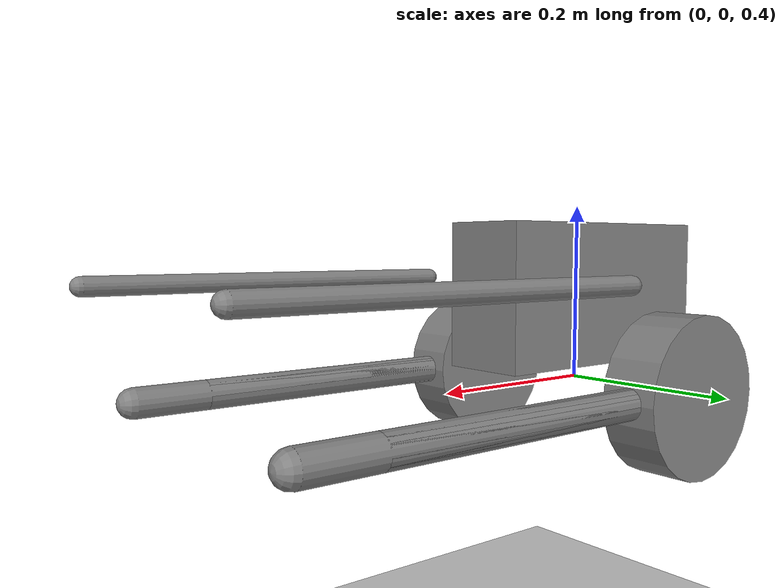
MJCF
<mujoco model="robotv2_3d">
  <compiler angle="radian" coordinate="local"/>
  <option timestep="0.001" integrator="RK4" solver="Newton" gravity="0 0 -9.81"/>

  <default>
    <joint damping="1.0" armature="0.01" limited="true"/>
    <geom contype="1" conaffinity="1" density="500"
          friction="2.0 0.2 0.02" solref="0.01 1" solimp="0.95 0.99 0.001"/>
    <motor ctrlrange="-1 1" ctrllimited="true"/>
  </default>

  <visual>
    <quality shadowsize="2048"/>
    <headlight ambient="0.15 0.15 0.15" diffuse="0.6 0.6 0.6" specular="0.2 0.2 0.2"/>
    <rgba haze="1 1 1 1"/>
    <global azimuth="2.0943951024" elevation="-0.2617993878"/>
  </visual>

  <asset>
    <texture name="floor_tex" type="2d" builtin="checker"
             rgb1="0.92 0.92 0.92" rgb2="0.78 0.78 0.78"
             width="512" height="512"/>
    <material name="floor_mat" texture="floor_tex" texrepeat="6 6"
              reflectance="0.15" shininess="0.8" specular="0.2"/>
  </asset>

  <worldbody>
    <geom name="ground" type="plane" pos="0 0 0" size="5 5 0.1" material="floor_mat"
          friction="2.0 0.2 0.02" condim="3"/>

    <!-- Studio lights -->
    <light name="key" pos="2 2 2.5" dir="-1 -1 -1" diffuse="0.9 0.9 0.9" specular="0.2 0.2 0.2"/>
    <light name="fill" pos="-2 1 1.5" dir="1 -0.5 -0.5" diffuse="0.4 0.4 0.4" specular="0 0 0"/>

    <!-- Full 3D floating base -->
    <body name="torso" pos="0 0 0.4">
      <joint name="base" type="free"/>

      <inertial pos="0 0 0" mass="10" diaginertia="0.2 0.2 0.2"/>
      <geom name="torso_geom" type="box" pos="0 0 0.1" size="0.15 0.05 0.08"/>

      <!-- Reference sites (track width = 0.310 m) -->
      <site name="H_L"  pos="0.00000  0.15500 0.00000" size="0.006" rgba="0 0 0 1"/>
      <site name="H_R"  pos="0.00000 -0.15500 0.00000" size="0.006" rgba="0 0 0 1"/>
      <site name="Bc_L" pos="0.09893  0.15500 0.11576" size="0.006" rgba="1 0 0 1"/>
      <site name="Bc_R" pos="0.09893 -0.15500 0.11576" size="0.006" rgba="1 0 0 1"/>

      <!-- Left linkage (Y+): H_L -> K_L -> W_L / C_L -->
      <body name="left_leg" pos="0 0.155 0">
        <body name="upper_L" pos="0 0 0">
          <joint name="hip_L" type="hinge" axis="0 1 0" range="0.4180063559 1.0653489754"/>
          <inertial pos="0.18 0 0" mass="2" diaginertia="0.05 0.05 0.01"/>

          <site name="K_L" pos="0.39609 0 0" size="0.006" rgba="0 0 1 1"/>
          <geom name="upper_capsule_L" type="capsule"
                fromto="0 0 0  0.39609 0 0" size="0.016"/>

          <body name="lower_L" pos="0.39609 0 0">
            <joint name="knee_L" type="hinge" axis="0 1 0" range="-2.1223203704 -0.7283258969"/>
            <inertial pos="0.19 0 0" mass="1.5" diaginertia="0.03 0.03 0.008"/>

            <site name="W_L" pos="-0.37996 0 0" size="0.006" rgba="0.6 0.6 0.6 1"/>
            <site name="C_L" pos="0.07506 0 0" size="0.006" rgba="0 1 0 1"/>

            <geom name="lower_capsule_L" type="capsule"
                  fromto="-0.37996 0 0  0.07506 0 0" size="0.016"/>

            <body name="wheel_L" pos="-0.37996 0 0">
              <joint name="wheel_L" type="hinge" axis="0 1 0" range="-100000 100000"/>
              <geom name="wheel_geom_L" type="cylinder" size="0.085 0.03" euler="1.5707963268 0 0"
                    friction="2.0 0.2 0.02" condim="3"/>
            </body>
          </body>
        </body>
      </body>

      <!-- Rod link: Bc_L -> C_L -->
      <body name="rod_L" pos="0.09893 0.155 0.11576">
        <joint name="bc_L" type="hinge" axis="0 1 0" range="-3.1415926536 3.1415926536"/>
        <site name="rod_tip_L" pos="0.41762 0 0" size="0.006"/>
        <geom name="rod_capsule_L" type="capsule"
              fromto="0 0 0  0.41762 0 0" size="0.010"/>
      </body>

      <!-- Right linkage (Y-): H_R -> K_R -> W_R / C_R -->
      <body name="right_leg" pos="0 -0.155 0">
        <body name="upper_R" pos="0 0 0">
          <joint name="hip_R" type="hinge" axis="0 1 0" range="0.4180063559 1.0653489754"/>
          <inertial pos="0.18 0 0" mass="2" diaginertia="0.05 0.05 0.01"/>

          <site name="K_R" pos="0.39609 0 0" size="0.006" rgba="0 0 1 1"/>
          <geom name="upper_capsule_R" type="capsule"
                fromto="0 0 0  0.39609 0 0" size="0.016"/>

          <body name="lower_R" pos="0.39609 0 0">
            <joint name="knee_R" type="hinge" axis="0 1 0" range="-2.1223203704 -0.7283258969"/>
            <inertial pos="0.19 0 0" mass="1.5" diaginertia="0.03 0.03 0.008"/>

            <site name="W_R" pos="-0.37996 0 0" size="0.006" rgba="0.6 0.6 0.6 1"/>
            <site name="C_R" pos="0.07506 0 0" size="0.006" rgba="0 1 0 1"/>

            <geom name="lower_capsule_R" type="capsule"
                  fromto="-0.37996 0 0  0.07506 0 0" size="0.016"/>

            <body name="wheel_R" pos="-0.37996 0 0">
              <joint name="wheel_R" type="hinge" axis="0 1 0" range="-100000 100000"/>
              <geom name="wheel_geom_R" type="cylinder" size="0.085 0.03" euler="1.5707963268 0 0"
                    friction="2.0 0.2 0.02" condim="3"/>
            </body>
          </body>
        </body>
      </body>

      <!-- Rod link: Bc_R -> C_R -->
      <body name="rod_R" pos="0.09893 -0.155 0.11576">
        <joint name="bc_R" type="hinge" axis="0 1 0" range="-3.1415926536 3.1415926536"/>
        <site name="rod_tip_R" pos="0.41762 0 0" size="0.006"/>
        <geom name="rod_capsule_R" type="capsule"
              fromto="0 0 0  0.41762 0 0" size="0.010"/>
      </body>
    </body>
  </worldbody>

  <!-- Close the loops: rod tips coincide with C points on lower legs -->
  <equality>
    <connect name="loop_BcC_L" site1="rod_tip_L" site2="C_L"
             solref="0.002 1" solimp="0.95 0.99 0.001"/>
    <connect name="loop_BcC_R" site1="rod_tip_R" site2="C_R"
             solref="0.002 1" solimp="0.95 0.99 0.001"/>
  </equality>

  <actuator>
    <position name="act_hip_L" joint="hip_L" kp="200" kv="2"
              ctrllimited="true" ctrlrange="0.4180063559 1.0653489754"/>
    <motor name="act_wheel_L" joint="wheel_L" gear="25"/>
    <position name="act_hip_R" joint="hip_R" kp="200" kv="2"
              ctrllimited="true" ctrlrange="0.4180063559 1.0653489754"/>
    <motor name="act_wheel_R" joint="wheel_R" gear="25"/>
  </actuator>

  <keyframe>
    <!-- qpos order: base (7) hip_L knee_L wheel_L bc_L hip_R knee_R wheel_R bc_R -->
    <key name="r0"
         qpos="0 0 0.37438  1 0 0 0  0.777 -1.52 0 0.961  0.777 -1.52 0 0.961"
         ctrl="0.777 0 0.777 0"/>
  </keyframe>
</mujoco>
